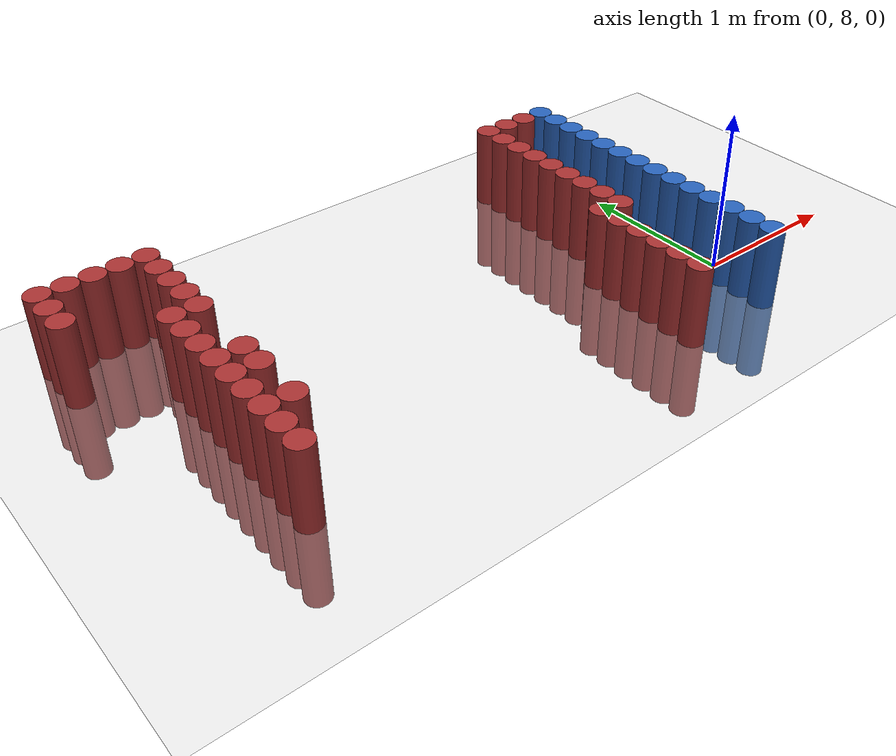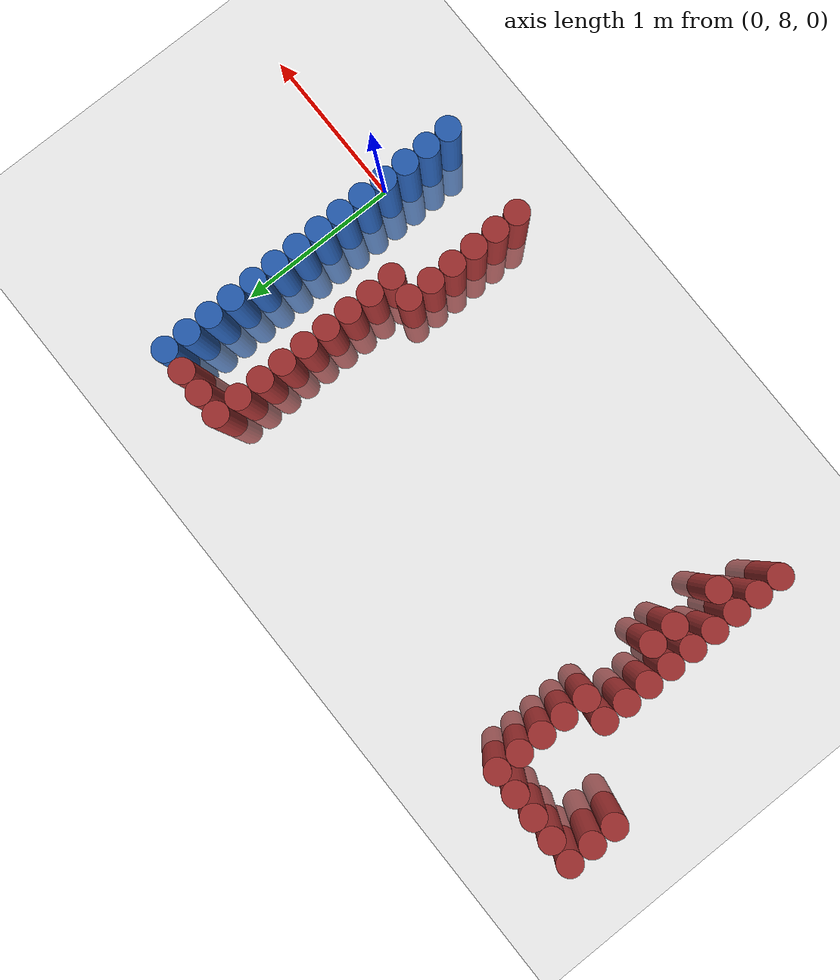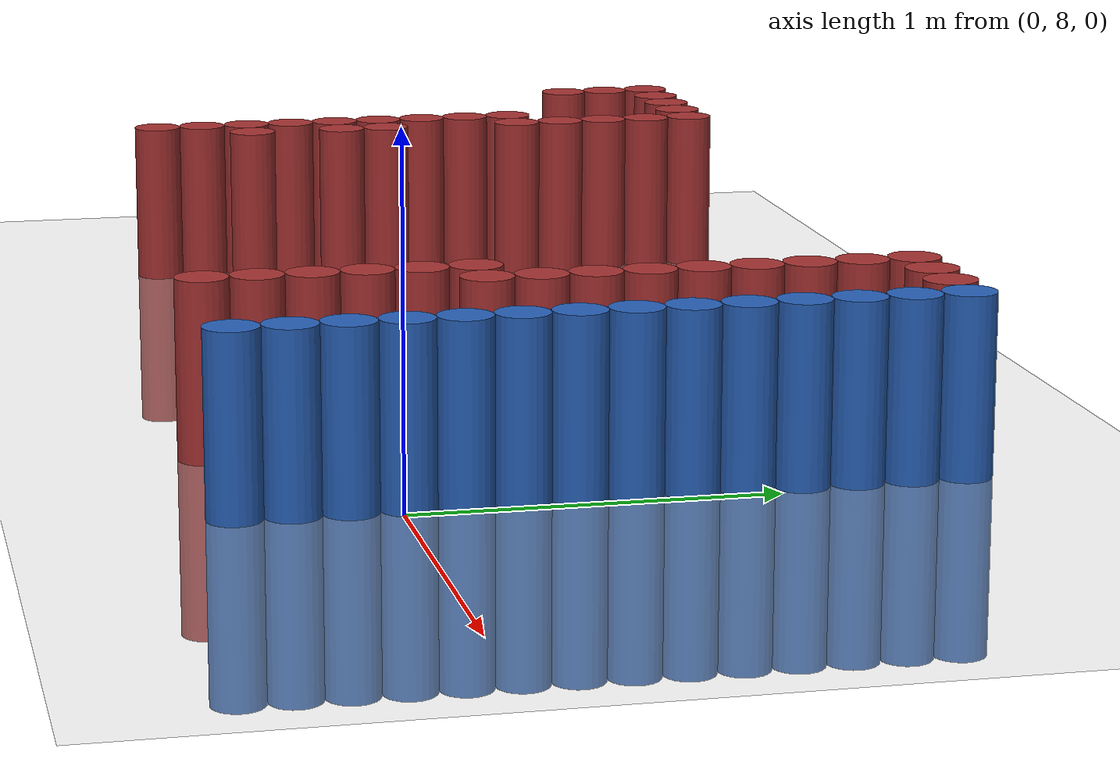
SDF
<sdf version="1.6">
 <world name="default">
  <model name="ground_plane">
   <static>1</static>
   <link name="link">
    <collision name="collision">
     <geometry><plane><normal>0 0 1</normal><size>100 100</size></plane></geometry>
     <surface><friction><ode><mu>100</mu><mu2>50</mu2></ode></friction></surface>
    </collision>
    <visual name="visual">
     <cast_shadows>0</cast_shadows>
     <geometry><plane><normal>0 0 1</normal><size>100 100</size></plane></geometry>
     <material>
      <script><uri>file://media/materials/scripts/gazebo.material</uri><name>Gazebo/Grey</name></script>
     </material>
    </visual>
   </link>
  </model>
  <model name="unit_cylinder_155">
   <static>1</static>
   <pose>-3.525000 9.225000 0.000000 0.000000 0.000000 0.000000</pose>
   <link name="link">
    <inertial>
     <mass>1</mass>
     <inertia><ixx>0.145833</ixx><ixy>0</ixy><ixz>0</ixz><iyy>0.145833</iyy><iyz>0</iyz><izz>0.125</izz></inertia>
    </inertial>
    <collision name="collision">
     <geometry><cylinder><radius>0.075000</radius><length>1</length></cylinder></geometry>
    </collision>
    <visual name="visual">
     <geometry><cylinder><radius>0.075000</radius><length>1</length></cylinder></geometry>
     <material>
      <ambient>0.648000 0.192000 0.192000 1</ambient>
      <diffuse>0.648000 0.192000 0.192000 1</diffuse>
     </material>
     <material>
      <script><name>Gazebo/Grey</name><uri>file://media/materials/scripts/gazebo.material</uri></script>
     </material>
    </visual>
   </link>
  </model>
  <model name="unit_cylinder_156">
   <static>1</static>
   <pose>-3.525000 9.375000 0.000000 0.000000 0.000000 0.000000</pose>
   <link name="link">
    <inertial>
     <mass>1</mass>
     <inertia><ixx>0.145833</ixx><ixy>0</ixy><ixz>0</ixz><iyy>0.145833</iyy><iyz>0</iyz><izz>0.125</izz></inertia>
    </inertial>
    <collision name="collision">
     <geometry><cylinder><radius>0.075000</radius><length>1</length></cylinder></geometry>
    </collision>
    <visual name="visual">
     <geometry><cylinder><radius>0.075000</radius><length>1</length></cylinder></geometry>
     <material>
      <ambient>0.648000 0.192000 0.192000 1</ambient>
      <diffuse>0.648000 0.192000 0.192000 1</diffuse>
     </material>
     <material>
      <script><name>Gazebo/Grey</name><uri>file://media/materials/scripts/gazebo.material</uri></script>
     </material>
    </visual>
   </link>
  </model>
  <model name="unit_cylinder_157">
   <static>1</static>
   <pose>-3.525000 9.525000 0.000000 0.000000 0.000000 0.000000</pose>
   <link name="link">
    <inertial>
     <mass>1</mass>
     <inertia><ixx>0.145833</ixx><ixy>0</ixy><ixz>0</ixz><iyy>0.145833</iyy><iyz>0</iyz><izz>0.125</izz></inertia>
    </inertial>
    <collision name="collision">
     <geometry><cylinder><radius>0.075000</radius><length>1</length></cylinder></geometry>
    </collision>
    <visual name="visual">
     <geometry><cylinder><radius>0.075000</radius><length>1</length></cylinder></geometry>
     <material>
      <ambient>0.648000 0.192000 0.192000 1</ambient>
      <diffuse>0.648000 0.192000 0.192000 1</diffuse>
     </material>
     <material>
      <script><name>Gazebo/Grey</name><uri>file://media/materials/scripts/gazebo.material</uri></script>
     </material>
    </visual>
   </link>
  </model>
  <model name="unit_cylinder_159">
   <static>1</static>
   <pose>-3.375000 9.525000 0.000000 0.000000 0.000000 0.000000</pose>
   <link name="link">
    <inertial>
     <mass>1</mass>
     <inertia><ixx>0.145833</ixx><ixy>0</ixy><ixz>0</ixz><iyy>0.145833</iyy><iyz>0</iyz><izz>0.125</izz></inertia>
    </inertial>
    <collision name="collision">
     <geometry><cylinder><radius>0.075000</radius><length>1</length></cylinder></geometry>
    </collision>
    <visual name="visual">
     <geometry><cylinder><radius>0.075000</radius><length>1</length></cylinder></geometry>
     <material>
      <ambient>0.648000 0.192000 0.192000 1</ambient>
      <diffuse>0.648000 0.192000 0.192000 1</diffuse>
     </material>
     <material>
      <script><name>Gazebo/Grey</name><uri>file://media/materials/scripts/gazebo.material</uri></script>
     </material>
    </visual>
   </link>
  </model>
  <model name="unit_cylinder_161">
   <static>1</static>
   <pose>-3.225000 9.525000 0.000000 0.000000 0.000000 0.000000</pose>
   <link name="link">
    <inertial>
     <mass>1</mass>
     <inertia><ixx>0.145833</ixx><ixy>0</ixy><ixz>0</ixz><iyy>0.145833</iyy><iyz>0</iyz><izz>0.125</izz></inertia>
    </inertial>
    <collision name="collision">
     <geometry><cylinder><radius>0.075000</radius><length>1</length></cylinder></geometry>
    </collision>
    <visual name="visual">
     <geometry><cylinder><radius>0.075000</radius><length>1</length></cylinder></geometry>
     <material>
      <ambient>0.648000 0.192000 0.192000 1</ambient>
      <diffuse>0.648000 0.192000 0.192000 1</diffuse>
     </material>
     <material>
      <script><name>Gazebo/Grey</name><uri>file://media/materials/scripts/gazebo.material</uri></script>
     </material>
    </visual>
   </link>
  </model>
  <model name="unit_cylinder_179">
   <static>1</static>
   <pose>-3.075000 7.725000 0.000000 0.000000 0.000000 0.000000</pose>
   <link name="link">
    <inertial>
     <mass>1</mass>
     <inertia><ixx>0.145833</ixx><ixy>0</ixy><ixz>0</ixz><iyy>0.145833</iyy><iyz>0</iyz><izz>0.125</izz></inertia>
    </inertial>
    <collision name="collision">
     <geometry><cylinder><radius>0.075000</radius><length>1</length></cylinder></geometry>
    </collision>
    <visual name="visual">
     <geometry><cylinder><radius>0.075000</radius><length>1</length></cylinder></geometry>
     <material>
      <ambient>0.648000 0.192000 0.192000 1</ambient>
      <diffuse>0.648000 0.192000 0.192000 1</diffuse>
     </material>
     <material>
      <script><name>Gazebo/Grey</name><uri>file://media/materials/scripts/gazebo.material</uri></script>
     </material>
    </visual>
   </link>
  </model>
  <model name="unit_cylinder_180">
   <static>1</static>
   <pose>-3.075000 7.875000 0.000000 0.000000 0.000000 0.000000</pose>
   <link name="link">
    <inertial>
     <mass>1</mass>
     <inertia><ixx>0.145833</ixx><ixy>0</ixy><ixz>0</ixz><iyy>0.145833</iyy><iyz>0</iyz><izz>0.125</izz></inertia>
    </inertial>
    <collision name="collision">
     <geometry><cylinder><radius>0.075000</radius><length>1</length></cylinder></geometry>
    </collision>
    <visual name="visual">
     <geometry><cylinder><radius>0.075000</radius><length>1</length></cylinder></geometry>
     <material>
      <ambient>0.648000 0.192000 0.192000 1</ambient>
      <diffuse>0.648000 0.192000 0.192000 1</diffuse>
     </material>
     <material>
      <script><name>Gazebo/Grey</name><uri>file://media/materials/scripts/gazebo.material</uri></script>
     </material>
    </visual>
   </link>
  </model>
  <model name="unit_cylinder_181">
   <static>1</static>
   <pose>-3.075000 8.025000 0.000000 0.000000 0.000000 0.000000</pose>
   <link name="link">
    <inertial>
     <mass>1</mass>
     <inertia><ixx>0.145833</ixx><ixy>0</ixy><ixz>0</ixz><iyy>0.145833</iyy><iyz>0</iyz><izz>0.125</izz></inertia>
    </inertial>
    <collision name="collision">
     <geometry><cylinder><radius>0.075000</radius><length>1</length></cylinder></geometry>
    </collision>
    <visual name="visual">
     <geometry><cylinder><radius>0.075000</radius><length>1</length></cylinder></geometry>
     <material>
      <ambient>0.648000 0.192000 0.192000 1</ambient>
      <diffuse>0.648000 0.192000 0.192000 1</diffuse>
     </material>
     <material>
      <script><name>Gazebo/Grey</name><uri>file://media/materials/scripts/gazebo.material</uri></script>
     </material>
    </visual>
   </link>
  </model>
  <model name="unit_cylinder_182">
   <static>1</static>
   <pose>-3.075000 8.175000 0.000000 0.000000 0.000000 0.000000</pose>
   <link name="link">
    <inertial>
     <mass>1</mass>
     <inertia><ixx>0.145833</ixx><ixy>0</ixy><ixz>0</ixz><iyy>0.145833</iyy><iyz>0</iyz><izz>0.125</izz></inertia>
    </inertial>
    <collision name="collision">
     <geometry><cylinder><radius>0.075000</radius><length>1</length></cylinder></geometry>
    </collision>
    <visual name="visual">
     <geometry><cylinder><radius>0.075000</radius><length>1</length></cylinder></geometry>
     <material>
      <ambient>0.648000 0.192000 0.192000 1</ambient>
      <diffuse>0.648000 0.192000 0.192000 1</diffuse>
     </material>
     <material>
      <script><name>Gazebo/Grey</name><uri>file://media/materials/scripts/gazebo.material</uri></script>
     </material>
    </visual>
   </link>
  </model>
  <model name="unit_cylinder_183">
   <static>1</static>
   <pose>-3.075000 8.325000 0.000000 0.000000 0.000000 0.000000</pose>
   <link name="link">
    <inertial>
     <mass>1</mass>
     <inertia><ixx>0.145833</ixx><ixy>0</ixy><ixz>0</ixz><iyy>0.145833</iyy><iyz>0</iyz><izz>0.125</izz></inertia>
    </inertial>
    <collision name="collision">
     <geometry><cylinder><radius>0.075000</radius><length>1</length></cylinder></geometry>
    </collision>
    <visual name="visual">
     <geometry><cylinder><radius>0.075000</radius><length>1</length></cylinder></geometry>
     <material>
      <ambient>0.648000 0.192000 0.192000 1</ambient>
      <diffuse>0.648000 0.192000 0.192000 1</diffuse>
     </material>
     <material>
      <script><name>Gazebo/Grey</name><uri>file://media/materials/scripts/gazebo.material</uri></script>
     </material>
    </visual>
   </link>
  </model>
  <model name="unit_cylinder_184">
   <static>1</static>
   <pose>-3.075000 8.475000 0.000000 0.000000 0.000000 0.000000</pose>
   <link name="link">
    <inertial>
     <mass>1</mass>
     <inertia><ixx>0.145833</ixx><ixy>0</ixy><ixz>0</ixz><iyy>0.145833</iyy><iyz>0</iyz><izz>0.125</izz></inertia>
    </inertial>
    <collision name="collision">
     <geometry><cylinder><radius>0.075000</radius><length>1</length></cylinder></geometry>
    </collision>
    <visual name="visual">
     <geometry><cylinder><radius>0.075000</radius><length>1</length></cylinder></geometry>
     <material>
      <ambient>0.648000 0.192000 0.192000 1</ambient>
      <diffuse>0.648000 0.192000 0.192000 1</diffuse>
     </material>
     <material>
      <script><name>Gazebo/Grey</name><uri>file://media/materials/scripts/gazebo.material</uri></script>
     </material>
    </visual>
   </link>
  </model>
  <model name="unit_cylinder_185">
   <static>1</static>
   <pose>-3.075000 8.625000 0.000000 0.000000 0.000000 0.000000</pose>
   <link name="link">
    <inertial>
     <mass>1</mass>
     <inertia><ixx>0.145833</ixx><ixy>0</ixy><ixz>0</ixz><iyy>0.145833</iyy><iyz>0</iyz><izz>0.125</izz></inertia>
    </inertial>
    <collision name="collision">
     <geometry><cylinder><radius>0.075000</radius><length>1</length></cylinder></geometry>
    </collision>
    <visual name="visual">
     <geometry><cylinder><radius>0.075000</radius><length>1</length></cylinder></geometry>
     <material>
      <ambient>0.648000 0.192000 0.192000 1</ambient>
      <diffuse>0.648000 0.192000 0.192000 1</diffuse>
     </material>
     <material>
      <script><name>Gazebo/Grey</name><uri>file://media/materials/scripts/gazebo.material</uri></script>
     </material>
    </visual>
   </link>
  </model>
  <model name="unit_cylinder_186">
   <static>1</static>
   <pose>-3.075000 8.775000 0.000000 0.000000 0.000000 0.000000</pose>
   <link name="link">
    <inertial>
     <mass>1</mass>
     <inertia><ixx>0.145833</ixx><ixy>0</ixy><ixz>0</ixz><iyy>0.145833</iyy><iyz>0</iyz><izz>0.125</izz></inertia>
    </inertial>
    <collision name="collision">
     <geometry><cylinder><radius>0.075000</radius><length>1</length></cylinder></geometry>
    </collision>
    <visual name="visual">
     <geometry><cylinder><radius>0.075000</radius><length>1</length></cylinder></geometry>
     <material>
      <ambient>0.648000 0.192000 0.192000 1</ambient>
      <diffuse>0.648000 0.192000 0.192000 1</diffuse>
     </material>
     <material>
      <script><name>Gazebo/Grey</name><uri>file://media/materials/scripts/gazebo.material</uri></script>
     </material>
    </visual>
   </link>
  </model>
  <model name="unit_cylinder_187">
   <static>1</static>
   <pose>-3.075000 8.925000 0.000000 0.000000 0.000000 0.000000</pose>
   <link name="link">
    <inertial>
     <mass>1</mass>
     <inertia><ixx>0.145833</ixx><ixy>0</ixy><ixz>0</ixz><iyy>0.145833</iyy><iyz>0</iyz><izz>0.125</izz></inertia>
    </inertial>
    <collision name="collision">
     <geometry><cylinder><radius>0.075000</radius><length>1</length></cylinder></geometry>
    </collision>
    <visual name="visual">
     <geometry><cylinder><radius>0.075000</radius><length>1</length></cylinder></geometry>
     <material>
      <ambient>0.648000 0.192000 0.192000 1</ambient>
      <diffuse>0.648000 0.192000 0.192000 1</diffuse>
     </material>
     <material>
      <script><name>Gazebo/Grey</name><uri>file://media/materials/scripts/gazebo.material</uri></script>
     </material>
    </visual>
   </link>
  </model>
  <model name="unit_cylinder_188">
   <static>1</static>
   <pose>-3.075000 9.525000 0.000000 0.000000 0.000000 0.000000</pose>
   <link name="link">
    <inertial>
     <mass>1</mass>
     <inertia><ixx>0.145833</ixx><ixy>0</ixy><ixz>0</ixz><iyy>0.145833</iyy><iyz>0</iyz><izz>0.125</izz></inertia>
    </inertial>
    <collision name="collision">
     <geometry><cylinder><radius>0.075000</radius><length>1</length></cylinder></geometry>
    </collision>
    <visual name="visual">
     <geometry><cylinder><radius>0.075000</radius><length>1</length></cylinder></geometry>
     <material>
      <ambient>0.648000 0.192000 0.192000 1</ambient>
      <diffuse>0.648000 0.192000 0.192000 1</diffuse>
     </material>
     <material>
      <script><name>Gazebo/Grey</name><uri>file://media/materials/scripts/gazebo.material</uri></script>
     </material>
    </visual>
   </link>
  </model>
  <model name="unit_cylinder_193">
   <static>1</static>
   <pose>-2.925000 8.025000 0.000000 0.000000 0.000000 0.000000</pose>
   <link name="link">
    <inertial>
     <mass>1</mass>
     <inertia><ixx>0.145833</ixx><ixy>0</ixy><ixz>0</ixz><iyy>0.145833</iyy><iyz>0</iyz><izz>0.125</izz></inertia>
    </inertial>
    <collision name="collision">
     <geometry><cylinder><radius>0.075000</radius><length>1</length></cylinder></geometry>
    </collision>
    <visual name="visual">
     <geometry><cylinder><radius>0.075000</radius><length>1</length></cylinder></geometry>
     <material>
      <ambient>0.648000 0.192000 0.192000 1</ambient>
      <diffuse>0.648000 0.192000 0.192000 1</diffuse>
     </material>
     <material>
      <script><name>Gazebo/Grey</name><uri>file://media/materials/scripts/gazebo.material</uri></script>
     </material>
    </visual>
   </link>
  </model>
  <model name="unit_cylinder_194">
   <static>1</static>
   <pose>-2.925000 8.325000 0.000000 0.000000 0.000000 0.000000</pose>
   <link name="link">
    <inertial>
     <mass>1</mass>
     <inertia><ixx>0.145833</ixx><ixy>0</ixy><ixz>0</ixz><iyy>0.145833</iyy><iyz>0</iyz><izz>0.125</izz></inertia>
    </inertial>
    <collision name="collision">
     <geometry><cylinder><radius>0.075000</radius><length>1</length></cylinder></geometry>
    </collision>
    <visual name="visual">
     <geometry><cylinder><radius>0.075000</radius><length>1</length></cylinder></geometry>
     <material>
      <ambient>0.648000 0.192000 0.192000 1</ambient>
      <diffuse>0.648000 0.192000 0.192000 1</diffuse>
     </material>
     <material>
      <script><name>Gazebo/Grey</name><uri>file://media/materials/scripts/gazebo.material</uri></script>
     </material>
    </visual>
   </link>
  </model>
  <model name="unit_cylinder_195">
   <static>1</static>
   <pose>-2.925000 8.475000 0.000000 0.000000 0.000000 0.000000</pose>
   <link name="link">
    <inertial>
     <mass>1</mass>
     <inertia><ixx>0.145833</ixx><ixy>0</ixy><ixz>0</ixz><iyy>0.145833</iyy><iyz>0</iyz><izz>0.125</izz></inertia>
    </inertial>
    <collision name="collision">
     <geometry><cylinder><radius>0.075000</radius><length>1</length></cylinder></geometry>
    </collision>
    <visual name="visual">
     <geometry><cylinder><radius>0.075000</radius><length>1</length></cylinder></geometry>
     <material>
      <ambient>0.648000 0.192000 0.192000 1</ambient>
      <diffuse>0.648000 0.192000 0.192000 1</diffuse>
     </material>
     <material>
      <script><name>Gazebo/Grey</name><uri>file://media/materials/scripts/gazebo.material</uri></script>
     </material>
    </visual>
   </link>
  </model>
  <model name="unit_cylinder_196">
   <static>1</static>
   <pose>-2.925000 8.925000 0.000000 0.000000 0.000000 0.000000</pose>
   <link name="link">
    <inertial>
     <mass>1</mass>
     <inertia><ixx>0.145833</ixx><ixy>0</ixy><ixz>0</ixz><iyy>0.145833</iyy><iyz>0</iyz><izz>0.125</izz></inertia>
    </inertial>
    <collision name="collision">
     <geometry><cylinder><radius>0.075000</radius><length>1</length></cylinder></geometry>
    </collision>
    <visual name="visual">
     <geometry><cylinder><radius>0.075000</radius><length>1</length></cylinder></geometry>
     <material>
      <ambient>0.648000 0.192000 0.192000 1</ambient>
      <diffuse>0.648000 0.192000 0.192000 1</diffuse>
     </material>
     <material>
      <script><name>Gazebo/Grey</name><uri>file://media/materials/scripts/gazebo.material</uri></script>
     </material>
    </visual>
   </link>
  </model>
  <model name="unit_cylinder_197">
   <static>1</static>
   <pose>-2.925000 9.075000 0.000000 0.000000 0.000000 0.000000</pose>
   <link name="link">
    <inertial>
     <mass>1</mass>
     <inertia><ixx>0.145833</ixx><ixy>0</ixy><ixz>0</ixz><iyy>0.145833</iyy><iyz>0</iyz><izz>0.125</izz></inertia>
    </inertial>
    <collision name="collision">
     <geometry><cylinder><radius>0.075000</radius><length>1</length></cylinder></geometry>
    </collision>
    <visual name="visual">
     <geometry><cylinder><radius>0.075000</radius><length>1</length></cylinder></geometry>
     <material>
      <ambient>0.648000 0.192000 0.192000 1</ambient>
      <diffuse>0.648000 0.192000 0.192000 1</diffuse>
     </material>
     <material>
      <script><name>Gazebo/Grey</name><uri>file://media/materials/scripts/gazebo.material</uri></script>
     </material>
    </visual>
   </link>
  </model>
  <model name="unit_cylinder_198">
   <static>1</static>
   <pose>-2.925000 9.225000 0.000000 0.000000 0.000000 0.000000</pose>
   <link name="link">
    <inertial>
     <mass>1</mass>
     <inertia><ixx>0.145833</ixx><ixy>0</ixy><ixz>0</ixz><iyy>0.145833</iyy><iyz>0</iyz><izz>0.125</izz></inertia>
    </inertial>
    <collision name="collision">
     <geometry><cylinder><radius>0.075000</radius><length>1</length></cylinder></geometry>
    </collision>
    <visual name="visual">
     <geometry><cylinder><radius>0.075000</radius><length>1</length></cylinder></geometry>
     <material>
      <ambient>0.648000 0.192000 0.192000 1</ambient>
      <diffuse>0.648000 0.192000 0.192000 1</diffuse>
     </material>
     <material>
      <script><name>Gazebo/Grey</name><uri>file://media/materials/scripts/gazebo.material</uri></script>
     </material>
    </visual>
   </link>
  </model>
  <model name="unit_cylinder_199">
   <static>1</static>
   <pose>-2.925000 9.375000 0.000000 0.000000 0.000000 0.000000</pose>
   <link name="link">
    <inertial>
     <mass>1</mass>
     <inertia><ixx>0.145833</ixx><ixy>0</ixy><ixz>0</ixz><iyy>0.145833</iyy><iyz>0</iyz><izz>0.125</izz></inertia>
    </inertial>
    <collision name="collision">
     <geometry><cylinder><radius>0.075000</radius><length>1</length></cylinder></geometry>
    </collision>
    <visual name="visual">
     <geometry><cylinder><radius>0.075000</radius><length>1</length></cylinder></geometry>
     <material>
      <ambient>0.648000 0.192000 0.192000 1</ambient>
      <diffuse>0.648000 0.192000 0.192000 1</diffuse>
     </material>
     <material>
      <script><name>Gazebo/Grey</name><uri>file://media/materials/scripts/gazebo.material</uri></script>
     </material>
    </visual>
   </link>
  </model>
  <model name="unit_cylinder_200">
   <static>1</static>
   <pose>-2.925000 9.525000 0.000000 0.000000 0.000000 0.000000</pose>
   <link name="link">
    <inertial>
     <mass>1</mass>
     <inertia><ixx>0.145833</ixx><ixy>0</ixy><ixz>0</ixz><iyy>0.145833</iyy><iyz>0</iyz><izz>0.125</izz></inertia>
    </inertial>
    <collision name="collision">
     <geometry><cylinder><radius>0.075000</radius><length>1</length></cylinder></geometry>
    </collision>
    <visual name="visual">
     <geometry><cylinder><radius>0.075000</radius><length>1</length></cylinder></geometry>
     <material>
      <ambient>0.648000 0.192000 0.192000 1</ambient>
      <diffuse>0.648000 0.192000 0.192000 1</diffuse>
     </material>
     <material>
      <script><name>Gazebo/Grey</name><uri>file://media/materials/scripts/gazebo.material</uri></script>
     </material>
    </visual>
   </link>
  </model>
  <model name="unit_cylinder_218">
   <static>1</static>
   <pose>-0.675000 7.575000 0.000000 0.000000 0.000000 0.000000</pose>
   <link name="link">
    <inertial>
     <mass>1</mass>
     <inertia><ixx>0.145833</ixx><ixy>0</ixy><ixz>0</ixz><iyy>0.145833</iyy><iyz>0</iyz><izz>0.125</izz></inertia>
    </inertial>
    <collision name="collision">
     <geometry><cylinder><radius>0.075000</radius><length>1</length></cylinder></geometry>
    </collision>
    <visual name="visual">
     <geometry><cylinder><radius>0.075000</radius><length>1</length></cylinder></geometry>
     <material>
      <ambient>0.648000 0.192000 0.192000 1</ambient>
      <diffuse>0.648000 0.192000 0.192000 1</diffuse>
     </material>
     <material>
      <script><name>Gazebo/Grey</name><uri>file://media/materials/scripts/gazebo.material</uri></script>
     </material>
    </visual>
   </link>
  </model>
  <model name="unit_cylinder_219">
   <static>1</static>
   <pose>-0.675000 7.725000 0.000000 0.000000 0.000000 0.000000</pose>
   <link name="link">
    <inertial>
     <mass>1</mass>
     <inertia><ixx>0.145833</ixx><ixy>0</ixy><ixz>0</ixz><iyy>0.145833</iyy><iyz>0</iyz><izz>0.125</izz></inertia>
    </inertial>
    <collision name="collision">
     <geometry><cylinder><radius>0.075000</radius><length>1</length></cylinder></geometry>
    </collision>
    <visual name="visual">
     <geometry><cylinder><radius>0.075000</radius><length>1</length></cylinder></geometry>
     <material>
      <ambient>0.648000 0.192000 0.192000 1</ambient>
      <diffuse>0.648000 0.192000 0.192000 1</diffuse>
     </material>
     <material>
      <script><name>Gazebo/Grey</name><uri>file://media/materials/scripts/gazebo.material</uri></script>
     </material>
    </visual>
   </link>
  </model>
  <model name="unit_cylinder_220">
   <static>1</static>
   <pose>-0.675000 7.875000 0.000000 0.000000 0.000000 0.000000</pose>
   <link name="link">
    <inertial>
     <mass>1</mass>
     <inertia><ixx>0.145833</ixx><ixy>0</ixy><ixz>0</ixz><iyy>0.145833</iyy><iyz>0</iyz><izz>0.125</izz></inertia>
    </inertial>
    <collision name="collision">
     <geometry><cylinder><radius>0.075000</radius><length>1</length></cylinder></geometry>
    </collision>
    <visual name="visual">
     <geometry><cylinder><radius>0.075000</radius><length>1</length></cylinder></geometry>
     <material>
      <ambient>0.648000 0.192000 0.192000 1</ambient>
      <diffuse>0.648000 0.192000 0.192000 1</diffuse>
     </material>
     <material>
      <script><name>Gazebo/Grey</name><uri>file://media/materials/scripts/gazebo.material</uri></script>
     </material>
    </visual>
   </link>
  </model>
  <model name="unit_cylinder_221">
   <static>1</static>
   <pose>-0.675000 8.025000 0.000000 0.000000 0.000000 0.000000</pose>
   <link name="link">
    <inertial>
     <mass>1</mass>
     <inertia><ixx>0.145833</ixx><ixy>0</ixy><ixz>0</ixz><iyy>0.145833</iyy><iyz>0</iyz><izz>0.125</izz></inertia>
    </inertial>
    <collision name="collision">
     <geometry><cylinder><radius>0.075000</radius><length>1</length></cylinder></geometry>
    </collision>
    <visual name="visual">
     <geometry><cylinder><radius>0.075000</radius><length>1</length></cylinder></geometry>
     <material>
      <ambient>0.648000 0.192000 0.192000 1</ambient>
      <diffuse>0.648000 0.192000 0.192000 1</diffuse>
     </material>
     <material>
      <script><name>Gazebo/Grey</name><uri>file://media/materials/scripts/gazebo.material</uri></script>
     </material>
    </visual>
   </link>
  </model>
  <model name="unit_cylinder_222">
   <static>1</static>
   <pose>-0.675000 8.175000 0.000000 0.000000 0.000000 0.000000</pose>
   <link name="link">
    <inertial>
     <mass>1</mass>
     <inertia><ixx>0.145833</ixx><ixy>0</ixy><ixz>0</ixz><iyy>0.145833</iyy><iyz>0</iyz><izz>0.125</izz></inertia>
    </inertial>
    <collision name="collision">
     <geometry><cylinder><radius>0.075000</radius><length>1</length></cylinder></geometry>
    </collision>
    <visual name="visual">
     <geometry><cylinder><radius>0.075000</radius><length>1</length></cylinder></geometry>
     <material>
      <ambient>0.648000 0.192000 0.192000 1</ambient>
      <diffuse>0.648000 0.192000 0.192000 1</diffuse>
     </material>
     <material>
      <script><name>Gazebo/Grey</name><uri>file://media/materials/scripts/gazebo.material</uri></script>
     </material>
    </visual>
   </link>
  </model>
  <model name="unit_cylinder_223">
   <static>1</static>
   <pose>-0.675000 8.325000 0.000000 0.000000 0.000000 0.000000</pose>
   <link name="link">
    <inertial>
     <mass>1</mass>
     <inertia><ixx>0.145833</ixx><ixy>0</ixy><ixz>0</ixz><iyy>0.145833</iyy><iyz>0</iyz><izz>0.125</izz></inertia>
    </inertial>
    <collision name="collision">
     <geometry><cylinder><radius>0.075000</radius><length>1</length></cylinder></geometry>
    </collision>
    <visual name="visual">
     <geometry><cylinder><radius>0.075000</radius><length>1</length></cylinder></geometry>
     <material>
      <ambient>0.648000 0.192000 0.192000 1</ambient>
      <diffuse>0.648000 0.192000 0.192000 1</diffuse>
     </material>
     <material>
      <script><name>Gazebo/Grey</name><uri>file://media/materials/scripts/gazebo.material</uri></script>
     </material>
    </visual>
   </link>
  </model>
  <model name="unit_cylinder_226">
   <static>1</static>
   <pose>-0.525000 8.325000 0.000000 0.000000 0.000000 0.000000</pose>
   <link name="link">
    <inertial>
     <mass>1</mass>
     <inertia><ixx>0.145833</ixx><ixy>0</ixy><ixz>0</ixz><iyy>0.145833</iyy><iyz>0</iyz><izz>0.125</izz></inertia>
    </inertial>
    <collision name="collision">
     <geometry><cylinder><radius>0.075000</radius><length>1</length></cylinder></geometry>
    </collision>
    <visual name="visual">
     <geometry><cylinder><radius>0.075000</radius><length>1</length></cylinder></geometry>
     <material>
      <ambient>0.648000 0.192000 0.192000 1</ambient>
      <diffuse>0.648000 0.192000 0.192000 1</diffuse>
     </material>
     <material>
      <script><name>Gazebo/Grey</name><uri>file://media/materials/scripts/gazebo.material</uri></script>
     </material>
    </visual>
   </link>
  </model>
  <model name="unit_cylinder_227">
   <static>1</static>
   <pose>-0.525000 8.475000 0.000000 0.000000 0.000000 0.000000</pose>
   <link name="link">
    <inertial>
     <mass>1</mass>
     <inertia><ixx>0.145833</ixx><ixy>0</ixy><ixz>0</ixz><iyy>0.145833</iyy><iyz>0</iyz><izz>0.125</izz></inertia>
    </inertial>
    <collision name="collision">
     <geometry><cylinder><radius>0.075000</radius><length>1</length></cylinder></geometry>
    </collision>
    <visual name="visual">
     <geometry><cylinder><radius>0.075000</radius><length>1</length></cylinder></geometry>
     <material>
      <ambient>0.648000 0.192000 0.192000 1</ambient>
      <diffuse>0.648000 0.192000 0.192000 1</diffuse>
     </material>
     <material>
      <script><name>Gazebo/Grey</name><uri>file://media/materials/scripts/gazebo.material</uri></script>
     </material>
    </visual>
   </link>
  </model>
  <model name="unit_cylinder_228">
   <static>1</static>
   <pose>-0.525000 8.625000 0.000000 0.000000 0.000000 0.000000</pose>
   <link name="link">
    <inertial>
     <mass>1</mass>
     <inertia><ixx>0.145833</ixx><ixy>0</ixy><ixz>0</ixz><iyy>0.145833</iyy><iyz>0</iyz><izz>0.125</izz></inertia>
    </inertial>
    <collision name="collision">
     <geometry><cylinder><radius>0.075000</radius><length>1</length></cylinder></geometry>
    </collision>
    <visual name="visual">
     <geometry><cylinder><radius>0.075000</radius><length>1</length></cylinder></geometry>
     <material>
      <ambient>0.648000 0.192000 0.192000 1</ambient>
      <diffuse>0.648000 0.192000 0.192000 1</diffuse>
     </material>
     <material>
      <script><name>Gazebo/Grey</name><uri>file://media/materials/scripts/gazebo.material</uri></script>
     </material>
    </visual>
   </link>
  </model>
  <model name="unit_cylinder_229">
   <static>1</static>
   <pose>-0.525000 8.775000 0.000000 0.000000 0.000000 0.000000</pose>
   <link name="link">
    <inertial>
     <mass>1</mass>
     <inertia><ixx>0.145833</ixx><ixy>0</ixy><ixz>0</ixz><iyy>0.145833</iyy><iyz>0</iyz><izz>0.125</izz></inertia>
    </inertial>
    <collision name="collision">
     <geometry><cylinder><radius>0.075000</radius><length>1</length></cylinder></geometry>
    </collision>
    <visual name="visual">
     <geometry><cylinder><radius>0.075000</radius><length>1</length></cylinder></geometry>
     <material>
      <ambient>0.648000 0.192000 0.192000 1</ambient>
      <diffuse>0.648000 0.192000 0.192000 1</diffuse>
     </material>
     <material>
      <script><name>Gazebo/Grey</name><uri>file://media/materials/scripts/gazebo.material</uri></script>
     </material>
    </visual>
   </link>
  </model>
  <model name="unit_cylinder_230">
   <static>1</static>
   <pose>-0.525000 8.925000 0.000000 0.000000 0.000000 0.000000</pose>
   <link name="link">
    <inertial>
     <mass>1</mass>
     <inertia><ixx>0.145833</ixx><ixy>0</ixy><ixz>0</ixz><iyy>0.145833</iyy><iyz>0</iyz><izz>0.125</izz></inertia>
    </inertial>
    <collision name="collision">
     <geometry><cylinder><radius>0.075000</radius><length>1</length></cylinder></geometry>
    </collision>
    <visual name="visual">
     <geometry><cylinder><radius>0.075000</radius><length>1</length></cylinder></geometry>
     <material>
      <ambient>0.648000 0.192000 0.192000 1</ambient>
      <diffuse>0.648000 0.192000 0.192000 1</diffuse>
     </material>
     <material>
      <script><name>Gazebo/Grey</name><uri>file://media/materials/scripts/gazebo.material</uri></script>
     </material>
    </visual>
   </link>
  </model>
  <model name="unit_cylinder_231">
   <static>1</static>
   <pose>-0.525000 9.075000 0.000000 0.000000 0.000000 0.000000</pose>
   <link name="link">
    <inertial>
     <mass>1</mass>
     <inertia><ixx>0.145833</ixx><ixy>0</ixy><ixz>0</ixz><iyy>0.145833</iyy><iyz>0</iyz><izz>0.125</izz></inertia>
    </inertial>
    <collision name="collision">
     <geometry><cylinder><radius>0.075000</radius><length>1</length></cylinder></geometry>
    </collision>
    <visual name="visual">
     <geometry><cylinder><radius>0.075000</radius><length>1</length></cylinder></geometry>
     <material>
      <ambient>0.648000 0.192000 0.192000 1</ambient>
      <diffuse>0.648000 0.192000 0.192000 1</diffuse>
     </material>
     <material>
      <script><name>Gazebo/Grey</name><uri>file://media/materials/scripts/gazebo.material</uri></script>
     </material>
    </visual>
   </link>
  </model>
  <model name="unit_cylinder_232">
   <static>1</static>
   <pose>-0.525000 9.225000 0.000000 0.000000 0.000000 0.000000</pose>
   <link name="link">
    <inertial>
     <mass>1</mass>
     <inertia><ixx>0.145833</ixx><ixy>0</ixy><ixz>0</ixz><iyy>0.145833</iyy><iyz>0</iyz><izz>0.125</izz></inertia>
    </inertial>
    <collision name="collision">
     <geometry><cylinder><radius>0.075000</radius><length>1</length></cylinder></geometry>
    </collision>
    <visual name="visual">
     <geometry><cylinder><radius>0.075000</radius><length>1</length></cylinder></geometry>
     <material>
      <ambient>0.648000 0.192000 0.192000 1</ambient>
      <diffuse>0.648000 0.192000 0.192000 1</diffuse>
     </material>
     <material>
      <script><name>Gazebo/Grey</name><uri>file://media/materials/scripts/gazebo.material</uri></script>
     </material>
    </visual>
   </link>
  </model>
  <model name="unit_cylinder_233">
   <static>1</static>
   <pose>-0.525000 9.375000 0.000000 0.000000 0.000000 0.000000</pose>
   <link name="link">
    <inertial>
     <mass>1</mass>
     <inertia><ixx>0.145833</ixx><ixy>0</ixy><ixz>0</ixz><iyy>0.145833</iyy><iyz>0</iyz><izz>0.125</izz></inertia>
    </inertial>
    <collision name="collision">
     <geometry><cylinder><radius>0.075000</radius><length>1</length></cylinder></geometry>
    </collision>
    <visual name="visual">
     <geometry><cylinder><radius>0.075000</radius><length>1</length></cylinder></geometry>
     <material>
      <ambient>0.648000 0.192000 0.192000 1</ambient>
      <diffuse>0.648000 0.192000 0.192000 1</diffuse>
     </material>
     <material>
      <script><name>Gazebo/Grey</name><uri>file://media/materials/scripts/gazebo.material</uri></script>
     </material>
    </visual>
   </link>
  </model>
  <model name="unit_cylinder_234">
   <static>1</static>
   <pose>-0.525000 9.525000 0.000000 0.000000 0.000000 0.000000</pose>
   <link name="link">
    <inertial>
     <mass>1</mass>
     <inertia><ixx>0.145833</ixx><ixy>0</ixy><ixz>0</ixz><iyy>0.145833</iyy><iyz>0</iyz><izz>0.125</izz></inertia>
    </inertial>
    <collision name="collision">
     <geometry><cylinder><radius>0.075000</radius><length>1</length></cylinder></geometry>
    </collision>
    <visual name="visual">
     <geometry><cylinder><radius>0.075000</radius><length>1</length></cylinder></geometry>
     <material>
      <ambient>0.648000 0.192000 0.192000 1</ambient>
      <diffuse>0.648000 0.192000 0.192000 1</diffuse>
     </material>
     <material>
      <script><name>Gazebo/Grey</name><uri>file://media/materials/scripts/gazebo.material</uri></script>
     </material>
    </visual>
   </link>
  </model>
  <model name="unit_cylinder_236">
   <static>1</static>
   <pose>-0.375000 9.525000 0.000000 0.000000 0.000000 0.000000</pose>
   <link name="link">
    <inertial>
     <mass>1</mass>
     <inertia><ixx>0.145833</ixx><ixy>0</ixy><ixz>0</ixz><iyy>0.145833</iyy><iyz>0</iyz><izz>0.125</izz></inertia>
    </inertial>
    <collision name="collision">
     <geometry><cylinder><radius>0.075000</radius><length>1</length></cylinder></geometry>
    </collision>
    <visual name="visual">
     <geometry><cylinder><radius>0.075000</radius><length>1</length></cylinder></geometry>
     <material>
      <ambient>0.648000 0.192000 0.192000 1</ambient>
      <diffuse>0.648000 0.192000 0.192000 1</diffuse>
     </material>
     <material>
      <script><name>Gazebo/Grey</name><uri>file://media/materials/scripts/gazebo.material</uri></script>
     </material>
    </visual>
   </link>
  </model>
  <model name="unit_cylinder_238">
   <static>1</static>
   <pose>-0.225000 9.525000 0.000000 0.000000 0.000000 0.000000</pose>
   <link name="link">
    <inertial>
     <mass>1</mass>
     <inertia><ixx>0.145833</ixx><ixy>0</ixy><ixz>0</ixz><iyy>0.145833</iyy><iyz>0</iyz><izz>0.125</izz></inertia>
    </inertial>
    <collision name="collision">
     <geometry><cylinder><radius>0.075000</radius><length>1</length></cylinder></geometry>
    </collision>
    <visual name="visual">
     <geometry><cylinder><radius>0.075000</radius><length>1</length></cylinder></geometry>
     <material>
      <ambient>0.648000 0.192000 0.192000 1</ambient>
      <diffuse>0.648000 0.192000 0.192000 1</diffuse>
     </material>
     <material>
      <script><name>Gazebo/Grey</name><uri>file://media/materials/scripts/gazebo.material</uri></script>
     </material>
    </visual>
   </link>
  </model>
  <model name="unit_cylinder_255">
   <static>1</static>
   <pose>-0.075000 7.575000 0.000000 0.000000 0.000000 0.000000</pose>
   <link name="link">
    <inertial>
     <mass>1</mass>
     <inertia><ixx>0.145833</ixx><ixy>0</ixy><ixz>0</ixz><iyy>0.145833</iyy><iyz>0</iyz><izz>0.125</izz></inertia>
    </inertial>
    <collision name="collision">
     <geometry><cylinder><radius>0.075000</radius><length>1</length></cylinder></geometry>
    </collision>
    <visual name="visual">
     <geometry><cylinder><radius>0.075000</radius><length>1</length></cylinder></geometry>
     <material>
      <ambient>0.152000 0.379000 0.720000 1</ambient>
      <diffuse>0.152000 0.379000 0.720000 1</diffuse>
     </material>
     <material>
      <script><name>Gazebo/Grey</name><uri>file://media/materials/scripts/gazebo.material</uri></script>
     </material>
    </visual>
   </link>
  </model>
  <model name="unit_cylinder_256">
   <static>1</static>
   <pose>-0.075000 7.725000 0.000000 0.000000 0.000000 0.000000</pose>
   <link name="link">
    <inertial>
     <mass>1</mass>
     <inertia><ixx>0.145833</ixx><ixy>0</ixy><ixz>0</ixz><iyy>0.145833</iyy><iyz>0</iyz><izz>0.125</izz></inertia>
    </inertial>
    <collision name="collision">
     <geometry><cylinder><radius>0.075000</radius><length>1</length></cylinder></geometry>
    </collision>
    <visual name="visual">
     <geometry><cylinder><radius>0.075000</radius><length>1</length></cylinder></geometry>
     <material>
      <ambient>0.152000 0.379000 0.720000 1</ambient>
      <diffuse>0.152000 0.379000 0.720000 1</diffuse>
     </material>
     <material>
      <script><name>Gazebo/Grey</name><uri>file://media/materials/scripts/gazebo.material</uri></script>
     </material>
    </visual>
   </link>
  </model>
  <model name="unit_cylinder_257">
   <static>1</static>
   <pose>-0.075000 7.875000 0.000000 0.000000 0.000000 0.000000</pose>
   <link name="link">
    <inertial>
     <mass>1</mass>
     <inertia><ixx>0.145833</ixx><ixy>0</ixy><ixz>0</ixz><iyy>0.145833</iyy><iyz>0</iyz><izz>0.125</izz></inertia>
    </inertial>
    <collision name="collision">
     <geometry><cylinder><radius>0.075000</radius><length>1</length></cylinder></geometry>
    </collision>
    <visual name="visual">
     <geometry><cylinder><radius>0.075000</radius><length>1</length></cylinder></geometry>
     <material>
      <ambient>0.152000 0.379000 0.720000 1</ambient>
      <diffuse>0.152000 0.379000 0.720000 1</diffuse>
     </material>
     <material>
      <script><name>Gazebo/Grey</name><uri>file://media/materials/scripts/gazebo.material</uri></script>
     </material>
    </visual>
   </link>
  </model>
  <model name="unit_cylinder_258">
   <static>1</static>
   <pose>-0.075000 8.025000 0.000000 0.000000 0.000000 0.000000</pose>
   <link name="link">
    <inertial>
     <mass>1</mass>
     <inertia><ixx>0.145833</ixx><ixy>0</ixy><ixz>0</ixz><iyy>0.145833</iyy><iyz>0</iyz><izz>0.125</izz></inertia>
    </inertial>
    <collision name="collision">
     <geometry><cylinder><radius>0.075000</radius><length>1</length></cylinder></geometry>
    </collision>
    <visual name="visual">
     <geometry><cylinder><radius>0.075000</radius><length>1</length></cylinder></geometry>
     <material>
      <ambient>0.152000 0.379000 0.720000 1</ambient>
      <diffuse>0.152000 0.379000 0.720000 1</diffuse>
     </material>
     <material>
      <script><name>Gazebo/Grey</name><uri>file://media/materials/scripts/gazebo.material</uri></script>
     </material>
    </visual>
   </link>
  </model>
  <model name="unit_cylinder_259">
   <static>1</static>
   <pose>-0.075000 8.175000 0.000000 0.000000 0.000000 0.000000</pose>
   <link name="link">
    <inertial>
     <mass>1</mass>
     <inertia><ixx>0.145833</ixx><ixy>0</ixy><ixz>0</ixz><iyy>0.145833</iyy><iyz>0</iyz><izz>0.125</izz></inertia>
    </inertial>
    <collision name="collision">
     <geometry><cylinder><radius>0.075000</radius><length>1</length></cylinder></geometry>
    </collision>
    <visual name="visual">
     <geometry><cylinder><radius>0.075000</radius><length>1</length></cylinder></geometry>
     <material>
      <ambient>0.152000 0.379000 0.720000 1</ambient>
      <diffuse>0.152000 0.379000 0.720000 1</diffuse>
     </material>
     <material>
      <script><name>Gazebo/Grey</name><uri>file://media/materials/scripts/gazebo.material</uri></script>
     </material>
    </visual>
   </link>
  </model>
  <model name="unit_cylinder_260">
   <static>1</static>
   <pose>-0.075000 8.325000 0.000000 0.000000 0.000000 0.000000</pose>
   <link name="link">
    <inertial>
     <mass>1</mass>
     <inertia><ixx>0.145833</ixx><ixy>0</ixy><ixz>0</ixz><iyy>0.145833</iyy><iyz>0</iyz><izz>0.125</izz></inertia>
    </inertial>
    <collision name="collision">
     <geometry><cylinder><radius>0.075000</radius><length>1</length></cylinder></geometry>
    </collision>
    <visual name="visual">
     <geometry><cylinder><radius>0.075000</radius><length>1</length></cylinder></geometry>
     <material>
      <ambient>0.152000 0.379000 0.720000 1</ambient>
      <diffuse>0.152000 0.379000 0.720000 1</diffuse>
     </material>
     <material>
      <script><name>Gazebo/Grey</name><uri>file://media/materials/scripts/gazebo.material</uri></script>
     </material>
    </visual>
   </link>
  </model>
  <model name="unit_cylinder_261">
   <static>1</static>
   <pose>-0.075000 8.475000 0.000000 0.000000 0.000000 0.000000</pose>
   <link name="link">
    <inertial>
     <mass>1</mass>
     <inertia><ixx>0.145833</ixx><ixy>0</ixy><ixz>0</ixz><iyy>0.145833</iyy><iyz>0</iyz><izz>0.125</izz></inertia>
    </inertial>
    <collision name="collision">
     <geometry><cylinder><radius>0.075000</radius><length>1</length></cylinder></geometry>
    </collision>
    <visual name="visual">
     <geometry><cylinder><radius>0.075000</radius><length>1</length></cylinder></geometry>
     <material>
      <ambient>0.152000 0.379000 0.720000 1</ambient>
      <diffuse>0.152000 0.379000 0.720000 1</diffuse>
     </material>
     <material>
      <script><name>Gazebo/Grey</name><uri>file://media/materials/scripts/gazebo.material</uri></script>
     </material>
    </visual>
   </link>
  </model>
  <model name="unit_cylinder_262">
   <static>1</static>
   <pose>-0.075000 8.625000 0.000000 0.000000 0.000000 0.000000</pose>
   <link name="link">
    <inertial>
     <mass>1</mass>
     <inertia><ixx>0.145833</ixx><ixy>0</ixy><ixz>0</ixz><iyy>0.145833</iyy><iyz>0</iyz><izz>0.125</izz></inertia>
    </inertial>
    <collision name="collision">
     <geometry><cylinder><radius>0.075000</radius><length>1</length></cylinder></geometry>
    </collision>
    <visual name="visual">
     <geometry><cylinder><radius>0.075000</radius><length>1</length></cylinder></geometry>
     <material>
      <ambient>0.152000 0.379000 0.720000 1</ambient>
      <diffuse>0.152000 0.379000 0.720000 1</diffuse>
     </material>
     <material>
      <script><name>Gazebo/Grey</name><uri>file://media/materials/scripts/gazebo.material</uri></script>
     </material>
    </visual>
   </link>
  </model>
  <model name="unit_cylinder_263">
   <static>1</static>
   <pose>-0.075000 8.775000 0.000000 0.000000 0.000000 0.000000</pose>
   <link name="link">
    <inertial>
     <mass>1</mass>
     <inertia><ixx>0.145833</ixx><ixy>0</ixy><ixz>0</ixz><iyy>0.145833</iyy><iyz>0</iyz><izz>0.125</izz></inertia>
    </inertial>
    <collision name="collision">
     <geometry><cylinder><radius>0.075000</radius><length>1</length></cylinder></geometry>
    </collision>
    <visual name="visual">
     <geometry><cylinder><radius>0.075000</radius><length>1</length></cylinder></geometry>
     <material>
      <ambient>0.152000 0.379000 0.720000 1</ambient>
      <diffuse>0.152000 0.379000 0.720000 1</diffuse>
     </material>
     <material>
      <script><name>Gazebo/Grey</name><uri>file://media/materials/scripts/gazebo.material</uri></script>
     </material>
    </visual>
   </link>
  </model>
  <model name="unit_cylinder_264">
   <static>1</static>
   <pose>-0.075000 8.925000 0.000000 0.000000 0.000000 0.000000</pose>
   <link name="link">
    <inertial>
     <mass>1</mass>
     <inertia><ixx>0.145833</ixx><ixy>0</ixy><ixz>0</ixz><iyy>0.145833</iyy><iyz>0</iyz><izz>0.125</izz></inertia>
    </inertial>
    <collision name="collision">
     <geometry><cylinder><radius>0.075000</radius><length>1</length></cylinder></geometry>
    </collision>
    <visual name="visual">
     <geometry><cylinder><radius>0.075000</radius><length>1</length></cylinder></geometry>
     <material>
      <ambient>0.152000 0.379000 0.720000 1</ambient>
      <diffuse>0.152000 0.379000 0.720000 1</diffuse>
     </material>
     <material>
      <script><name>Gazebo/Grey</name><uri>file://media/materials/scripts/gazebo.material</uri></script>
     </material>
    </visual>
   </link>
  </model>
  <model name="unit_cylinder_265">
   <static>1</static>
   <pose>-0.075000 9.075000 0.000000 0.000000 0.000000 0.000000</pose>
   <link name="link">
    <inertial>
     <mass>1</mass>
     <inertia><ixx>0.145833</ixx><ixy>0</ixy><ixz>0</ixz><iyy>0.145833</iyy><iyz>0</iyz><izz>0.125</izz></inertia>
    </inertial>
    <collision name="collision">
     <geometry><cylinder><radius>0.075000</radius><length>1</length></cylinder></geometry>
    </collision>
    <visual name="visual">
     <geometry><cylinder><radius>0.075000</radius><length>1</length></cylinder></geometry>
     <material>
      <ambient>0.152000 0.379000 0.720000 1</ambient>
      <diffuse>0.152000 0.379000 0.720000 1</diffuse>
     </material>
     <material>
      <script><name>Gazebo/Grey</name><uri>file://media/materials/scripts/gazebo.material</uri></script>
     </material>
    </visual>
   </link>
  </model>
  <model name="unit_cylinder_266">
   <static>1</static>
   <pose>-0.075000 9.225000 0.000000 0.000000 0.000000 0.000000</pose>
   <link name="link">
    <inertial>
     <mass>1</mass>
     <inertia><ixx>0.145833</ixx><ixy>0</ixy><ixz>0</ixz><iyy>0.145833</iyy><iyz>0</iyz><izz>0.125</izz></inertia>
    </inertial>
    <collision name="collision">
     <geometry><cylinder><radius>0.075000</radius><length>1</length></cylinder></geometry>
    </collision>
    <visual name="visual">
     <geometry><cylinder><radius>0.075000</radius><length>1</length></cylinder></geometry>
     <material>
      <ambient>0.152000 0.379000 0.720000 1</ambient>
      <diffuse>0.152000 0.379000 0.720000 1</diffuse>
     </material>
     <material>
      <script><name>Gazebo/Grey</name><uri>file://media/materials/scripts/gazebo.material</uri></script>
     </material>
    </visual>
   </link>
  </model>
  <model name="unit_cylinder_267">
   <static>1</static>
   <pose>-0.075000 9.375000 0.000000 0.000000 0.000000 0.000000</pose>
   <link name="link">
    <inertial>
     <mass>1</mass>
     <inertia><ixx>0.145833</ixx><ixy>0</ixy><ixz>0</ixz><iyy>0.145833</iyy><iyz>0</iyz><izz>0.125</izz></inertia>
    </inertial>
    <collision name="collision">
     <geometry><cylinder><radius>0.075000</radius><length>1</length></cylinder></geometry>
    </collision>
    <visual name="visual">
     <geometry><cylinder><radius>0.075000</radius><length>1</length></cylinder></geometry>
     <material>
      <ambient>0.152000 0.379000 0.720000 1</ambient>
      <diffuse>0.152000 0.379000 0.720000 1</diffuse>
     </material>
     <material>
      <script><name>Gazebo/Grey</name><uri>file://media/materials/scripts/gazebo.material</uri></script>
     </material>
    </visual>
   </link>
  </model>
  <model name="unit_cylinder_268">
   <static>1</static>
   <pose>-0.075000 9.525000 0.000000 0.000000 0.000000 0.000000</pose>
   <link name="link">
    <inertial>
     <mass>1</mass>
     <inertia><ixx>0.145833</ixx><ixy>0</ixy><ixz>0</ixz><iyy>0.145833</iyy><iyz>0</iyz><izz>0.125</izz></inertia>
    </inertial>
    <collision name="collision">
     <geometry><cylinder><radius>0.075000</radius><length>1</length></cylinder></geometry>
    </collision>
    <visual name="visual">
     <geometry><cylinder><radius>0.075000</radius><length>1</length></cylinder></geometry>
     <material>
      <ambient>0.152000 0.379000 0.720000 1</ambient>
      <diffuse>0.152000 0.379000 0.720000 1</diffuse>
     </material>
     <material>
      <script><name>Gazebo/Grey</name><uri>file://media/materials/scripts/gazebo.material</uri></script>
     </material>
    </visual>
   </link>
  </model>
 </world>
</sdf>
